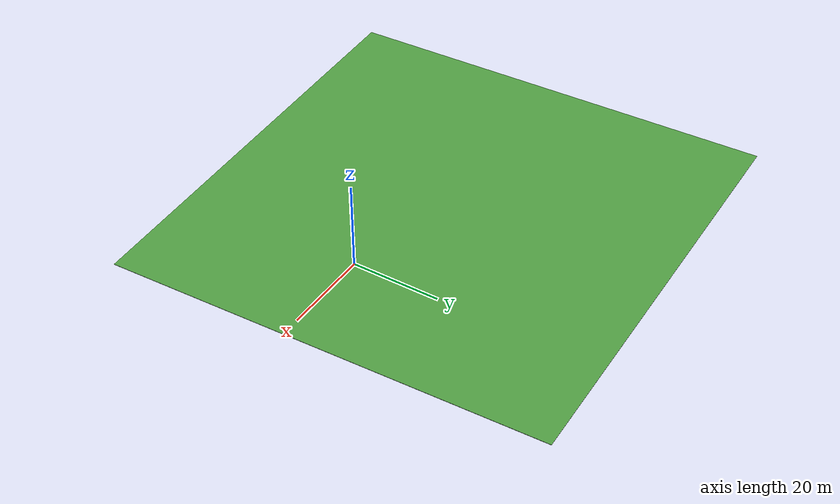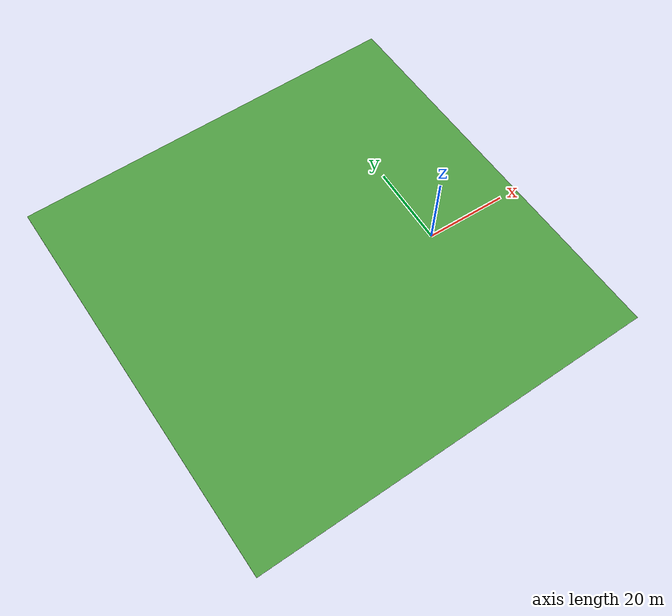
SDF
<?xml version="1.0" ?>
<sdf version="1.5">
  <world name="map">
    <!-- A global light source -->
    <include>
      <uri>model://sun</uri>
    </include>
    <!-- A ground plane -->
    <physics name='default_physics' default='0' type='ode'>
      <gravity>0 0 -9.8066</gravity>
      <ode>
        <solver>
          <type>quick</type>
          <iters>10</iters>
          <sor>1.3</sor>
          <use_dynamic_moi_rescaling>0</use_dynamic_moi_rescaling>
        </solver>
        <constraints>
          <cfm>0</cfm>
          <erp>0.2</erp>
          <contact_max_correcting_vel>100</contact_max_correcting_vel>
          <contact_surface_layer>0.001</contact_surface_layer>
        </constraints>
      </ode>
      <max_step_size>0.004</max_step_size>
      <real_time_factor>1</real_time_factor>
      <real_time_update_rate>250</real_time_update_rate>
      <magnetic_field>6.0e-6 2.3e-5 -4.2e-5</magnetic_field>
    </physics>

    <!-- HCA PLANE -->
    <include>
      <static>true</static>
      <name>hca_plane</name>
      <uri>model://hca_plane</uri>
      <pose>-25.691803 6.624629 0 0 0 1.609</pose>
    </include>

    <!-- Fix the light conditions -->
    <scene>
      <ambient>0.0 0.0 0.0 1.0</ambient>
      <shadows>0</shadows>
    </scene>
  </world>
</sdf>

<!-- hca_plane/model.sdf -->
<sdf version="1.5">
  <model name="hca_plane">
    <static>true</static>
    <link name="link">
      <collision name="collision">
        <geometry>
          <box>
            <size>100.82 100.01 0.1</size>
          </box>
        </geometry>
        <surface>
          <friction>
            <ode>
              <mu>100</mu>
              <mu2>50</mu2>
            </ode>
          </friction>
        </surface>
      </collision>
      <visual name="visual">
        <cast_shadows>false</cast_shadows>
        <geometry>
          <box>
            <size>100.82 100.01 0.1</size>
          </box>
        </geometry>
        <material>
          <script>
            <uri>model://hca_plane/materials/scripts/ground_plane.material</uri>
            <uri>model://hca_plane/materials/scripts</uri>
            <uri>model://hca_plane/materials/textures</uri>

            <name>GroundPlane/Grass</name>
          </script>
        </material>
      </visual>
    </link>
  </model>
</sdf>
